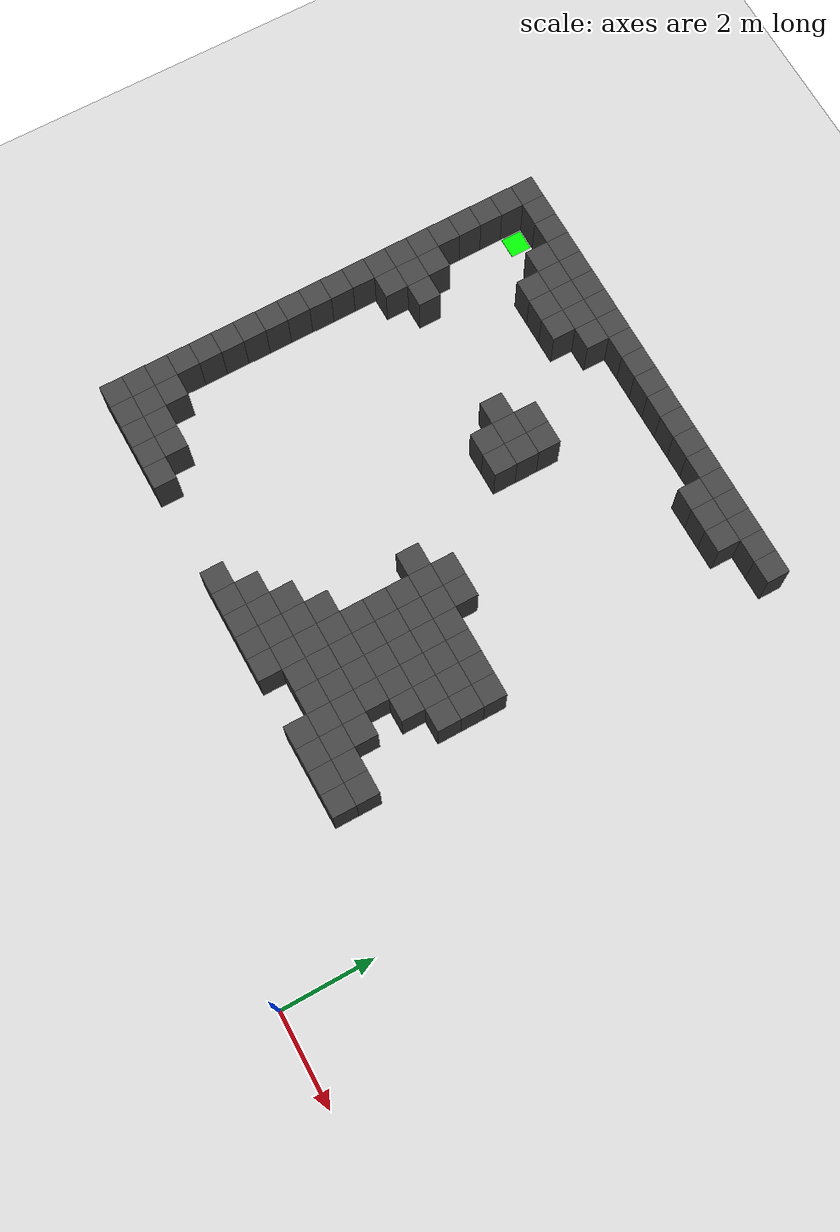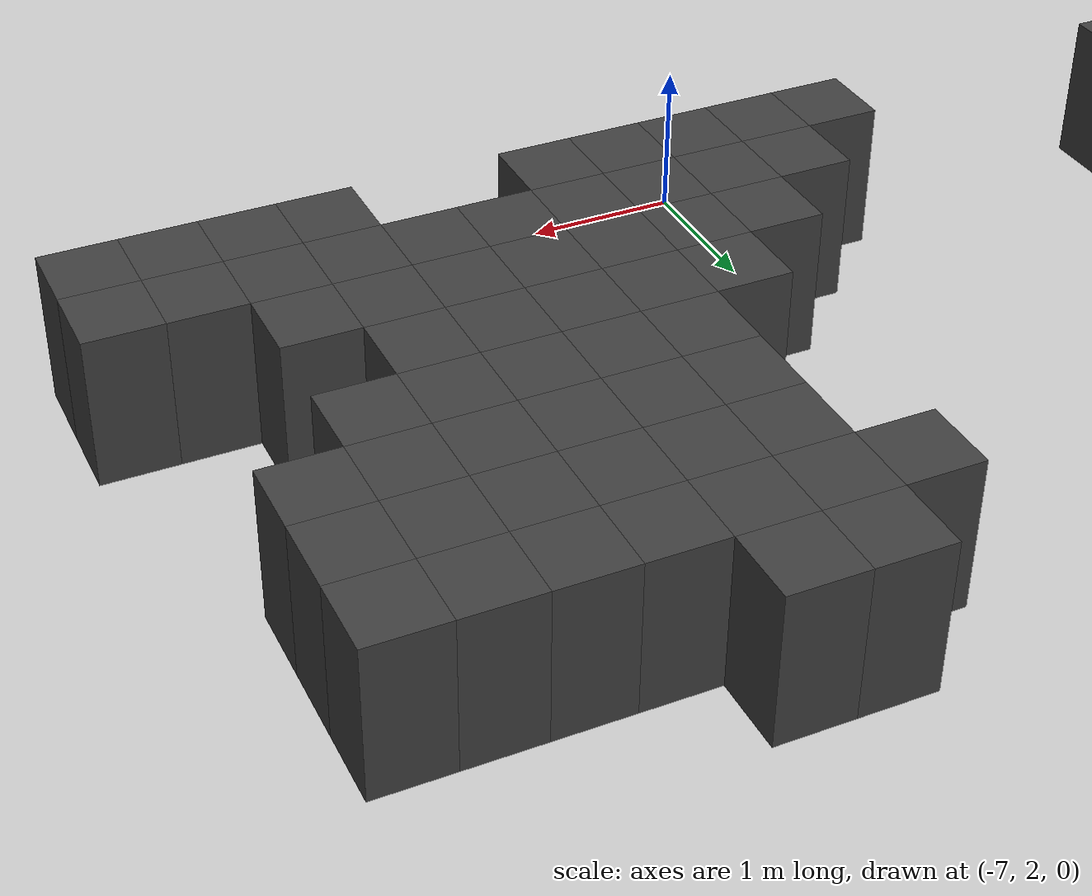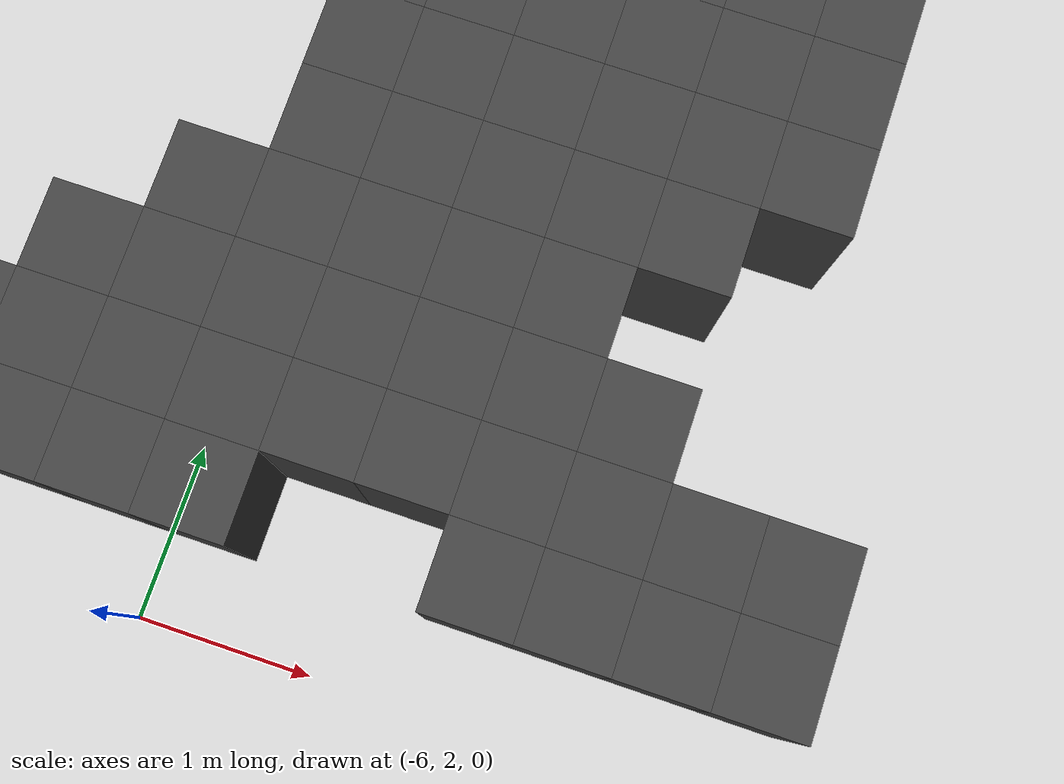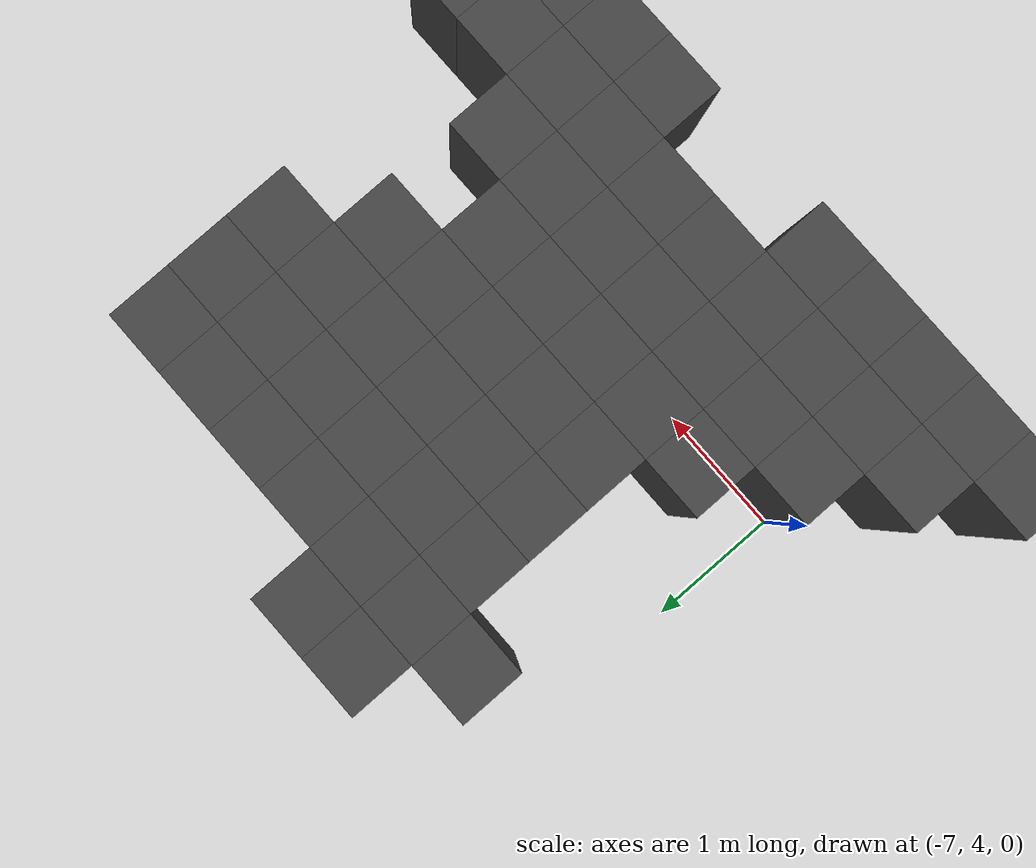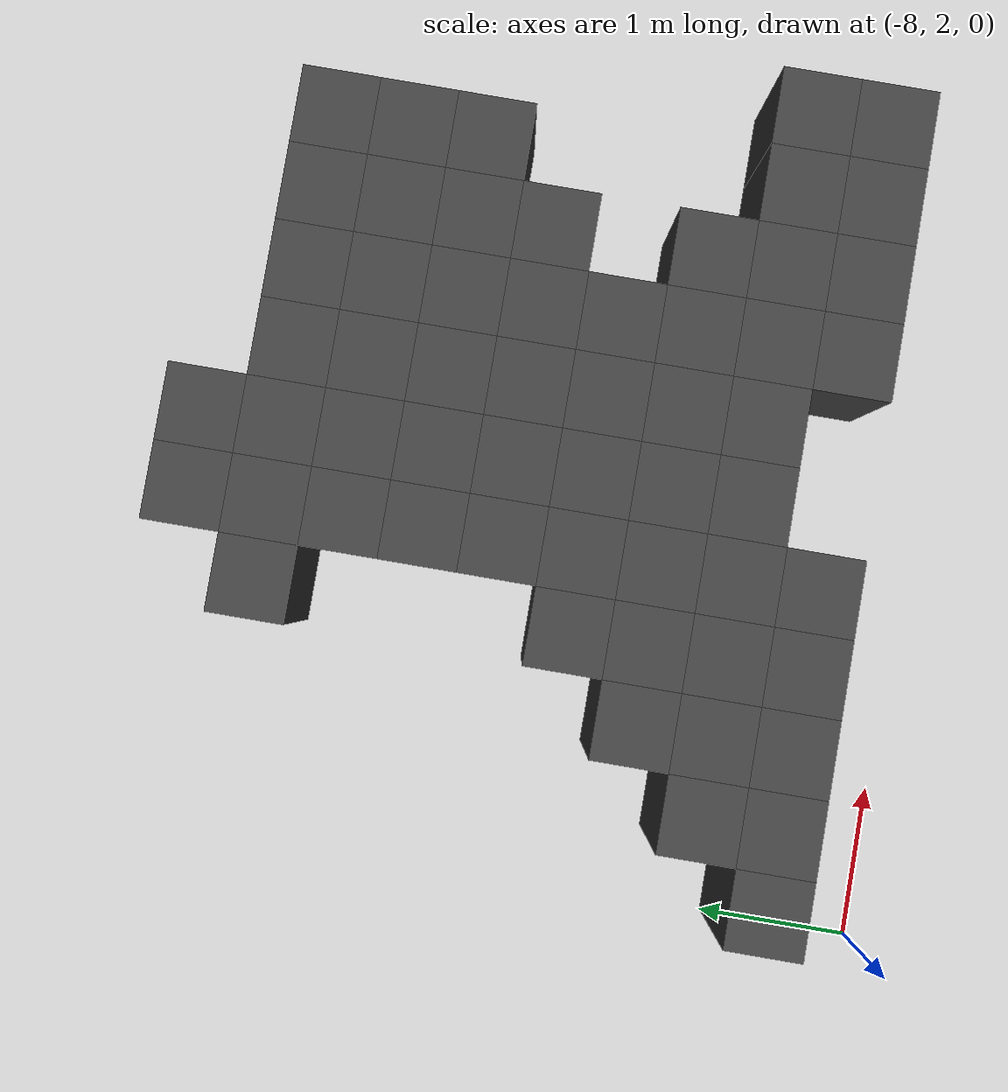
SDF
<sdf version="1.7">
 <world name="map_7981">
  <model name="ground_plane">
   <static>true</static>
   <link name="link">
    <collision name="collision">
     <geometry><plane><normal>0 0 1</normal><size>200 200</size></plane></geometry>
    </collision>
    <visual name="visual">
     <geometry><plane><normal>0 0 1</normal><size>200 200</size></plane></geometry>
     <material><ambient>0.8 0.8 0.8 1</ambient><diffuse>0.8 0.8 0.8 1</diffuse></material>
    </visual>
   </link>
  </model>
  <model name="maze_environment">
   <static>true</static>
   <link name="wall_0">
    <pose>-12.250 12.250 0.500 0 0 0</pose>
    <collision name="col"><geometry><box><size>0.5 0.5 1.0</size></box></geometry></collision>
    <visual name="vis">
     <geometry><box><size>0.5 0.5 1.0</size></box></geometry>
     <material><ambient>0.15 0.15 0.15 1</ambient><diffuse>0.25 0.25 0.25 1</diffuse></material>
    </visual>
   </link>
   <link name="wall_1">
    <pose>-11.750 12.250 0.500 0 0 0</pose>
    <collision name="col"><geometry><box><size>0.5 0.5 1.0</size></box></geometry></collision>
    <visual name="vis">
     <geometry><box><size>0.5 0.5 1.0</size></box></geometry>
     <material><ambient>0.15 0.15 0.15 1</ambient><diffuse>0.25 0.25 0.25 1</diffuse></material>
    </visual>
   </link>
   <link name="wall_2">
    <pose>-11.250 12.250 0.500 0 0 0</pose>
    <collision name="col"><geometry><box><size>0.5 0.5 1.0</size></box></geometry></collision>
    <visual name="vis">
     <geometry><box><size>0.5 0.5 1.0</size></box></geometry>
     <material><ambient>0.15 0.15 0.15 1</ambient><diffuse>0.25 0.25 0.25 1</diffuse></material>
    </visual>
   </link>
   <link name="wall_3">
    <pose>-10.750 12.250 0.500 0 0 0</pose>
    <collision name="col"><geometry><box><size>0.5 0.5 1.0</size></box></geometry></collision>
    <visual name="vis">
     <geometry><box><size>0.5 0.5 1.0</size></box></geometry>
     <material><ambient>0.15 0.15 0.15 1</ambient><diffuse>0.25 0.25 0.25 1</diffuse></material>
    </visual>
   </link>
   <link name="wall_4">
    <pose>-10.250 12.250 0.500 0 0 0</pose>
    <collision name="col"><geometry><box><size>0.5 0.5 1.0</size></box></geometry></collision>
    <visual name="vis">
     <geometry><box><size>0.5 0.5 1.0</size></box></geometry>
     <material><ambient>0.15 0.15 0.15 1</ambient><diffuse>0.25 0.25 0.25 1</diffuse></material>
    </visual>
   </link>
   <link name="wall_5">
    <pose>-9.750 12.250 0.500 0 0 0</pose>
    <collision name="col"><geometry><box><size>0.5 0.5 1.0</size></box></geometry></collision>
    <visual name="vis">
     <geometry><box><size>0.5 0.5 1.0</size></box></geometry>
     <material><ambient>0.15 0.15 0.15 1</ambient><diffuse>0.25 0.25 0.25 1</diffuse></material>
    </visual>
   </link>
   <link name="wall_6">
    <pose>-9.250 12.250 0.500 0 0 0</pose>
    <collision name="col"><geometry><box><size>0.5 0.5 1.0</size></box></geometry></collision>
    <visual name="vis">
     <geometry><box><size>0.5 0.5 1.0</size></box></geometry>
     <material><ambient>0.15 0.15 0.15 1</ambient><diffuse>0.25 0.25 0.25 1</diffuse></material>
    </visual>
   </link>
   <link name="wall_7">
    <pose>-8.750 12.250 0.500 0 0 0</pose>
    <collision name="col"><geometry><box><size>0.5 0.5 1.0</size></box></geometry></collision>
    <visual name="vis">
     <geometry><box><size>0.5 0.5 1.0</size></box></geometry>
     <material><ambient>0.15 0.15 0.15 1</ambient><diffuse>0.25 0.25 0.25 1</diffuse></material>
    </visual>
   </link>
   <link name="wall_8">
    <pose>-8.250 12.250 0.500 0 0 0</pose>
    <collision name="col"><geometry><box><size>0.5 0.5 1.0</size></box></geometry></collision>
    <visual name="vis">
     <geometry><box><size>0.5 0.5 1.0</size></box></geometry>
     <material><ambient>0.15 0.15 0.15 1</ambient><diffuse>0.25 0.25 0.25 1</diffuse></material>
    </visual>
   </link>
   <link name="wall_9">
    <pose>-7.750 12.250 0.500 0 0 0</pose>
    <collision name="col"><geometry><box><size>0.5 0.5 1.0</size></box></geometry></collision>
    <visual name="vis">
     <geometry><box><size>0.5 0.5 1.0</size></box></geometry>
     <material><ambient>0.15 0.15 0.15 1</ambient><diffuse>0.25 0.25 0.25 1</diffuse></material>
    </visual>
   </link>
   <link name="wall_10">
    <pose>-7.250 12.250 0.500 0 0 0</pose>
    <collision name="col"><geometry><box><size>0.5 0.5 1.0</size></box></geometry></collision>
    <visual name="vis">
     <geometry><box><size>0.5 0.5 1.0</size></box></geometry>
     <material><ambient>0.15 0.15 0.15 1</ambient><diffuse>0.25 0.25 0.25 1</diffuse></material>
    </visual>
   </link>
   <link name="wall_11">
    <pose>-6.750 12.250 0.500 0 0 0</pose>
    <collision name="col"><geometry><box><size>0.5 0.5 1.0</size></box></geometry></collision>
    <visual name="vis">
     <geometry><box><size>0.5 0.5 1.0</size></box></geometry>
     <material><ambient>0.15 0.15 0.15 1</ambient><diffuse>0.25 0.25 0.25 1</diffuse></material>
    </visual>
   </link>
   <link name="wall_12">
    <pose>-6.250 12.250 0.500 0 0 0</pose>
    <collision name="col"><geometry><box><size>0.5 0.5 1.0</size></box></geometry></collision>
    <visual name="vis">
     <geometry><box><size>0.5 0.5 1.0</size></box></geometry>
     <material><ambient>0.15 0.15 0.15 1</ambient><diffuse>0.25 0.25 0.25 1</diffuse></material>
    </visual>
   </link>
   <link name="wall_13">
    <pose>-5.750 12.250 0.500 0 0 0</pose>
    <collision name="col"><geometry><box><size>0.5 0.5 1.0</size></box></geometry></collision>
    <visual name="vis">
     <geometry><box><size>0.5 0.5 1.0</size></box></geometry>
     <material><ambient>0.15 0.15 0.15 1</ambient><diffuse>0.25 0.25 0.25 1</diffuse></material>
    </visual>
   </link>
   <link name="wall_14">
    <pose>-5.250 12.250 0.500 0 0 0</pose>
    <collision name="col"><geometry><box><size>0.5 0.5 1.0</size></box></geometry></collision>
    <visual name="vis">
     <geometry><box><size>0.5 0.5 1.0</size></box></geometry>
     <material><ambient>0.15 0.15 0.15 1</ambient><diffuse>0.25 0.25 0.25 1</diffuse></material>
    </visual>
   </link>
   <link name="wall_15">
    <pose>-4.750 12.250 0.500 0 0 0</pose>
    <collision name="col"><geometry><box><size>0.5 0.5 1.0</size></box></geometry></collision>
    <visual name="vis">
     <geometry><box><size>0.5 0.5 1.0</size></box></geometry>
     <material><ambient>0.15 0.15 0.15 1</ambient><diffuse>0.25 0.25 0.25 1</diffuse></material>
    </visual>
   </link>
   <link name="wall_16">
    <pose>-4.250 12.250 0.500 0 0 0</pose>
    <collision name="col"><geometry><box><size>0.5 0.5 1.0</size></box></geometry></collision>
    <visual name="vis">
     <geometry><box><size>0.5 0.5 1.0</size></box></geometry>
     <material><ambient>0.15 0.15 0.15 1</ambient><diffuse>0.25 0.25 0.25 1</diffuse></material>
    </visual>
   </link>
   <link name="wall_17">
    <pose>-3.750 12.250 0.500 0 0 0</pose>
    <collision name="col"><geometry><box><size>0.5 0.5 1.0</size></box></geometry></collision>
    <visual name="vis">
     <geometry><box><size>0.5 0.5 1.0</size></box></geometry>
     <material><ambient>0.15 0.15 0.15 1</ambient><diffuse>0.25 0.25 0.25 1</diffuse></material>
    </visual>
   </link>
   <link name="wall_18">
    <pose>-3.250 12.250 0.500 0 0 0</pose>
    <collision name="col"><geometry><box><size>0.5 0.5 1.0</size></box></geometry></collision>
    <visual name="vis">
     <geometry><box><size>0.5 0.5 1.0</size></box></geometry>
     <material><ambient>0.15 0.15 0.15 1</ambient><diffuse>0.25 0.25 0.25 1</diffuse></material>
    </visual>
   </link>
   <link name="wall_19">
    <pose>-2.750 12.250 0.500 0 0 0</pose>
    <collision name="col"><geometry><box><size>0.5 0.5 1.0</size></box></geometry></collision>
    <visual name="vis">
     <geometry><box><size>0.5 0.5 1.0</size></box></geometry>
     <material><ambient>0.15 0.15 0.15 1</ambient><diffuse>0.25 0.25 0.25 1</diffuse></material>
    </visual>
   </link>
   <link name="wall_50">
    <pose>-12.250 11.750 0.500 0 0 0</pose>
    <collision name="col"><geometry><box><size>0.5 0.5 1.0</size></box></geometry></collision>
    <visual name="vis">
     <geometry><box><size>0.5 0.5 1.0</size></box></geometry>
     <material><ambient>0.15 0.15 0.15 1</ambient><diffuse>0.25 0.25 0.25 1</diffuse></material>
    </visual>
   </link>
   <link name="wall_51">
    <pose>-10.750 11.750 0.500 0 0 0</pose>
    <collision name="col"><geometry><box><size>0.5 0.5 1.0</size></box></geometry></collision>
    <visual name="vis">
     <geometry><box><size>0.5 0.5 1.0</size></box></geometry>
     <material><ambient>0.15 0.15 0.15 1</ambient><diffuse>0.25 0.25 0.25 1</diffuse></material>
    </visual>
   </link>
   <link name="wall_52">
    <pose>-10.250 11.750 0.500 0 0 0</pose>
    <collision name="col"><geometry><box><size>0.5 0.5 1.0</size></box></geometry></collision>
    <visual name="vis">
     <geometry><box><size>0.5 0.5 1.0</size></box></geometry>
     <material><ambient>0.15 0.15 0.15 1</ambient><diffuse>0.25 0.25 0.25 1</diffuse></material>
    </visual>
   </link>
   <link name="wall_53">
    <pose>-9.750 11.750 0.500 0 0 0</pose>
    <collision name="col"><geometry><box><size>0.5 0.5 1.0</size></box></geometry></collision>
    <visual name="vis">
     <geometry><box><size>0.5 0.5 1.0</size></box></geometry>
     <material><ambient>0.15 0.15 0.15 1</ambient><diffuse>0.25 0.25 0.25 1</diffuse></material>
    </visual>
   </link>
   <link name="wall_54">
    <pose>-9.250 11.750 0.500 0 0 0</pose>
    <collision name="col"><geometry><box><size>0.5 0.5 1.0</size></box></geometry></collision>
    <visual name="vis">
     <geometry><box><size>0.5 0.5 1.0</size></box></geometry>
     <material><ambient>0.15 0.15 0.15 1</ambient><diffuse>0.25 0.25 0.25 1</diffuse></material>
    </visual>
   </link>
   <link name="wall_55">
    <pose>-8.750 11.750 0.500 0 0 0</pose>
    <collision name="col"><geometry><box><size>0.5 0.5 1.0</size></box></geometry></collision>
    <visual name="vis">
     <geometry><box><size>0.5 0.5 1.0</size></box></geometry>
     <material><ambient>0.15 0.15 0.15 1</ambient><diffuse>0.25 0.25 0.25 1</diffuse></material>
    </visual>
   </link>
   <link name="wall_56">
    <pose>-4.750 11.750 0.500 0 0 0</pose>
    <collision name="col"><geometry><box><size>0.5 0.5 1.0</size></box></geometry></collision>
    <visual name="vis">
     <geometry><box><size>0.5 0.5 1.0</size></box></geometry>
     <material><ambient>0.15 0.15 0.15 1</ambient><diffuse>0.25 0.25 0.25 1</diffuse></material>
    </visual>
   </link>
   <link name="wall_57">
    <pose>-4.250 11.750 0.500 0 0 0</pose>
    <collision name="col"><geometry><box><size>0.5 0.5 1.0</size></box></geometry></collision>
    <visual name="vis">
     <geometry><box><size>0.5 0.5 1.0</size></box></geometry>
     <material><ambient>0.15 0.15 0.15 1</ambient><diffuse>0.25 0.25 0.25 1</diffuse></material>
    </visual>
   </link>
   <link name="wall_58">
    <pose>-3.750 11.750 0.500 0 0 0</pose>
    <collision name="col"><geometry><box><size>0.5 0.5 1.0</size></box></geometry></collision>
    <visual name="vis">
     <geometry><box><size>0.5 0.5 1.0</size></box></geometry>
     <material><ambient>0.15 0.15 0.15 1</ambient><diffuse>0.25 0.25 0.25 1</diffuse></material>
    </visual>
   </link>
   <link name="wall_73">
    <pose>-12.250 11.250 0.500 0 0 0</pose>
    <collision name="col"><geometry><box><size>0.5 0.5 1.0</size></box></geometry></collision>
    <visual name="vis">
     <geometry><box><size>0.5 0.5 1.0</size></box></geometry>
     <material><ambient>0.15 0.15 0.15 1</ambient><diffuse>0.25 0.25 0.25 1</diffuse></material>
    </visual>
   </link>
   <link name="wall_74">
    <pose>-10.250 11.250 0.500 0 0 0</pose>
    <collision name="col"><geometry><box><size>0.5 0.5 1.0</size></box></geometry></collision>
    <visual name="vis">
     <geometry><box><size>0.5 0.5 1.0</size></box></geometry>
     <material><ambient>0.15 0.15 0.15 1</ambient><diffuse>0.25 0.25 0.25 1</diffuse></material>
    </visual>
   </link>
   <link name="wall_75">
    <pose>-9.750 11.250 0.500 0 0 0</pose>
    <collision name="col"><geometry><box><size>0.5 0.5 1.0</size></box></geometry></collision>
    <visual name="vis">
     <geometry><box><size>0.5 0.5 1.0</size></box></geometry>
     <material><ambient>0.15 0.15 0.15 1</ambient><diffuse>0.25 0.25 0.25 1</diffuse></material>
    </visual>
   </link>
   <link name="wall_76">
    <pose>-9.250 11.250 0.500 0 0 0</pose>
    <collision name="col"><geometry><box><size>0.5 0.5 1.0</size></box></geometry></collision>
    <visual name="vis">
     <geometry><box><size>0.5 0.5 1.0</size></box></geometry>
     <material><ambient>0.15 0.15 0.15 1</ambient><diffuse>0.25 0.25 0.25 1</diffuse></material>
    </visual>
   </link>
   <link name="wall_88">
    <pose>-12.250 10.750 0.500 0 0 0</pose>
    <collision name="col"><geometry><box><size>0.5 0.5 1.0</size></box></geometry></collision>
    <visual name="vis">
     <geometry><box><size>0.5 0.5 1.0</size></box></geometry>
     <material><ambient>0.15 0.15 0.15 1</ambient><diffuse>0.25 0.25 0.25 1</diffuse></material>
    </visual>
   </link>
   <link name="wall_101">
    <pose>-12.250 10.250 0.500 0 0 0</pose>
    <collision name="col"><geometry><box><size>0.5 0.5 1.0</size></box></geometry></collision>
    <visual name="vis">
     <geometry><box><size>0.5 0.5 1.0</size></box></geometry>
     <material><ambient>0.15 0.15 0.15 1</ambient><diffuse>0.25 0.25 0.25 1</diffuse></material>
    </visual>
   </link>
   <link name="wall_114">
    <pose>-12.250 9.750 0.500 0 0 0</pose>
    <collision name="col"><geometry><box><size>0.5 0.5 1.0</size></box></geometry></collision>
    <visual name="vis">
     <geometry><box><size>0.5 0.5 1.0</size></box></geometry>
     <material><ambient>0.15 0.15 0.15 1</ambient><diffuse>0.25 0.25 0.25 1</diffuse></material>
    </visual>
   </link>
   <link name="wall_115">
    <pose>-11.750 9.750 0.500 0 0 0</pose>
    <collision name="col"><geometry><box><size>0.5 0.5 1.0</size></box></geometry></collision>
    <visual name="vis">
     <geometry><box><size>0.5 0.5 1.0</size></box></geometry>
     <material><ambient>0.15 0.15 0.15 1</ambient><diffuse>0.25 0.25 0.25 1</diffuse></material>
    </visual>
   </link>
   <link name="wall_116">
    <pose>-7.750 9.750 0.500 0 0 0</pose>
    <collision name="col"><geometry><box><size>0.5 0.5 1.0</size></box></geometry></collision>
    <visual name="vis">
     <geometry><box><size>0.5 0.5 1.0</size></box></geometry>
     <material><ambient>0.15 0.15 0.15 1</ambient><diffuse>0.25 0.25 0.25 1</diffuse></material>
    </visual>
   </link>
   <link name="wall_117">
    <pose>-7.250 9.750 0.500 0 0 0</pose>
    <collision name="col"><geometry><box><size>0.5 0.5 1.0</size></box></geometry></collision>
    <visual name="vis">
     <geometry><box><size>0.5 0.5 1.0</size></box></geometry>
     <material><ambient>0.15 0.15 0.15 1</ambient><diffuse>0.25 0.25 0.25 1</diffuse></material>
    </visual>
   </link>
   <link name="wall_129">
    <pose>-12.250 9.250 0.500 0 0 0</pose>
    <collision name="col"><geometry><box><size>0.5 0.5 1.0</size></box></geometry></collision>
    <visual name="vis">
     <geometry><box><size>0.5 0.5 1.0</size></box></geometry>
     <material><ambient>0.15 0.15 0.15 1</ambient><diffuse>0.25 0.25 0.25 1</diffuse></material>
    </visual>
   </link>
   <link name="wall_130">
    <pose>-11.750 9.250 0.500 0 0 0</pose>
    <collision name="col"><geometry><box><size>0.5 0.5 1.0</size></box></geometry></collision>
    <visual name="vis">
     <geometry><box><size>0.5 0.5 1.0</size></box></geometry>
     <material><ambient>0.15 0.15 0.15 1</ambient><diffuse>0.25 0.25 0.25 1</diffuse></material>
    </visual>
   </link>
   <link name="wall_131">
    <pose>-11.250 9.250 0.500 0 0 0</pose>
    <collision name="col"><geometry><box><size>0.5 0.5 1.0</size></box></geometry></collision>
    <visual name="vis">
     <geometry><box><size>0.5 0.5 1.0</size></box></geometry>
     <material><ambient>0.15 0.15 0.15 1</ambient><diffuse>0.25 0.25 0.25 1</diffuse></material>
    </visual>
   </link>
   <link name="wall_132">
    <pose>-8.250 9.250 0.500 0 0 0</pose>
    <collision name="col"><geometry><box><size>0.5 0.5 1.0</size></box></geometry></collision>
    <visual name="vis">
     <geometry><box><size>0.5 0.5 1.0</size></box></geometry>
     <material><ambient>0.15 0.15 0.15 1</ambient><diffuse>0.25 0.25 0.25 1</diffuse></material>
    </visual>
   </link>
   <link name="wall_133">
    <pose>-7.750 9.250 0.500 0 0 0</pose>
    <collision name="col"><geometry><box><size>0.5 0.5 1.0</size></box></geometry></collision>
    <visual name="vis">
     <geometry><box><size>0.5 0.5 1.0</size></box></geometry>
     <material><ambient>0.15 0.15 0.15 1</ambient><diffuse>0.25 0.25 0.25 1</diffuse></material>
    </visual>
   </link>
   <link name="wall_134">
    <pose>-7.250 9.250 0.500 0 0 0</pose>
    <collision name="col"><geometry><box><size>0.5 0.5 1.0</size></box></geometry></collision>
    <visual name="vis">
     <geometry><box><size>0.5 0.5 1.0</size></box></geometry>
     <material><ambient>0.15 0.15 0.15 1</ambient><diffuse>0.25 0.25 0.25 1</diffuse></material>
    </visual>
   </link>
   <link name="wall_141">
    <pose>-12.250 8.750 0.500 0 0 0</pose>
    <collision name="col"><geometry><box><size>0.5 0.5 1.0</size></box></geometry></collision>
    <visual name="vis">
     <geometry><box><size>0.5 0.5 1.0</size></box></geometry>
     <material><ambient>0.15 0.15 0.15 1</ambient><diffuse>0.25 0.25 0.25 1</diffuse></material>
    </visual>
   </link>
   <link name="wall_142">
    <pose>-11.750 8.750 0.500 0 0 0</pose>
    <collision name="col"><geometry><box><size>0.5 0.5 1.0</size></box></geometry></collision>
    <visual name="vis">
     <geometry><box><size>0.5 0.5 1.0</size></box></geometry>
     <material><ambient>0.15 0.15 0.15 1</ambient><diffuse>0.25 0.25 0.25 1</diffuse></material>
    </visual>
   </link>
   <link name="wall_143">
    <pose>-7.750 8.750 0.500 0 0 0</pose>
    <collision name="col"><geometry><box><size>0.5 0.5 1.0</size></box></geometry></collision>
    <visual name="vis">
     <geometry><box><size>0.5 0.5 1.0</size></box></geometry>
     <material><ambient>0.15 0.15 0.15 1</ambient><diffuse>0.25 0.25 0.25 1</diffuse></material>
    </visual>
   </link>
   <link name="wall_144">
    <pose>-7.250 8.750 0.500 0 0 0</pose>
    <collision name="col"><geometry><box><size>0.5 0.5 1.0</size></box></geometry></collision>
    <visual name="vis">
     <geometry><box><size>0.5 0.5 1.0</size></box></geometry>
     <material><ambient>0.15 0.15 0.15 1</ambient><diffuse>0.25 0.25 0.25 1</diffuse></material>
    </visual>
   </link>
   <link name="wall_146">
    <pose>-12.250 8.250 0.500 0 0 0</pose>
    <collision name="col"><geometry><box><size>0.5 0.5 1.0</size></box></geometry></collision>
    <visual name="vis">
     <geometry><box><size>0.5 0.5 1.0</size></box></geometry>
     <material><ambient>0.15 0.15 0.15 1</ambient><diffuse>0.25 0.25 0.25 1</diffuse></material>
    </visual>
   </link>
   <link name="wall_149">
    <pose>-12.250 7.750 0.500 0 0 0</pose>
    <collision name="col"><geometry><box><size>0.5 0.5 1.0</size></box></geometry></collision>
    <visual name="vis">
     <geometry><box><size>0.5 0.5 1.0</size></box></geometry>
     <material><ambient>0.15 0.15 0.15 1</ambient><diffuse>0.25 0.25 0.25 1</diffuse></material>
    </visual>
   </link>
   <link name="wall_154">
    <pose>-12.250 7.250 0.500 0 0 0</pose>
    <collision name="col"><geometry><box><size>0.5 0.5 1.0</size></box></geometry></collision>
    <visual name="vis">
     <geometry><box><size>0.5 0.5 1.0</size></box></geometry>
     <material><ambient>0.15 0.15 0.15 1</ambient><diffuse>0.25 0.25 0.25 1</diffuse></material>
    </visual>
   </link>
   <link name="wall_157">
    <pose>-12.250 6.750 0.500 0 0 0</pose>
    <collision name="col"><geometry><box><size>0.5 0.5 1.0</size></box></geometry></collision>
    <visual name="vis">
     <geometry><box><size>0.5 0.5 1.0</size></box></geometry>
     <material><ambient>0.15 0.15 0.15 1</ambient><diffuse>0.25 0.25 0.25 1</diffuse></material>
    </visual>
   </link>
   <link name="wall_158">
    <pose>-5.750 6.750 0.500 0 0 0</pose>
    <collision name="col"><geometry><box><size>0.5 0.5 1.0</size></box></geometry></collision>
    <visual name="vis">
     <geometry><box><size>0.5 0.5 1.0</size></box></geometry>
     <material><ambient>0.15 0.15 0.15 1</ambient><diffuse>0.25 0.25 0.25 1</diffuse></material>
    </visual>
   </link>
   <link name="wall_159">
    <pose>-5.250 6.750 0.500 0 0 0</pose>
    <collision name="col"><geometry><box><size>0.5 0.5 1.0</size></box></geometry></collision>
    <visual name="vis">
     <geometry><box><size>0.5 0.5 1.0</size></box></geometry>
     <material><ambient>0.15 0.15 0.15 1</ambient><diffuse>0.25 0.25 0.25 1</diffuse></material>
    </visual>
   </link>
   <link name="wall_162">
    <pose>-12.250 6.250 0.500 0 0 0</pose>
    <collision name="col"><geometry><box><size>0.5 0.5 1.0</size></box></geometry></collision>
    <visual name="vis">
     <geometry><box><size>0.5 0.5 1.0</size></box></geometry>
     <material><ambient>0.15 0.15 0.15 1</ambient><diffuse>0.25 0.25 0.25 1</diffuse></material>
    </visual>
   </link>
   <link name="wall_163">
    <pose>-6.250 6.250 0.500 0 0 0</pose>
    <collision name="col"><geometry><box><size>0.5 0.5 1.0</size></box></geometry></collision>
    <visual name="vis">
     <geometry><box><size>0.5 0.5 1.0</size></box></geometry>
     <material><ambient>0.15 0.15 0.15 1</ambient><diffuse>0.25 0.25 0.25 1</diffuse></material>
    </visual>
   </link>
   <link name="wall_164">
    <pose>-5.750 6.250 0.500 0 0 0</pose>
    <collision name="col"><geometry><box><size>0.5 0.5 1.0</size></box></geometry></collision>
    <visual name="vis">
     <geometry><box><size>0.5 0.5 1.0</size></box></geometry>
     <material><ambient>0.15 0.15 0.15 1</ambient><diffuse>0.25 0.25 0.25 1</diffuse></material>
    </visual>
   </link>
   <link name="wall_165">
    <pose>-5.250 6.250 0.500 0 0 0</pose>
    <collision name="col"><geometry><box><size>0.5 0.5 1.0</size></box></geometry></collision>
    <visual name="vis">
     <geometry><box><size>0.5 0.5 1.0</size></box></geometry>
     <material><ambient>0.15 0.15 0.15 1</ambient><diffuse>0.25 0.25 0.25 1</diffuse></material>
    </visual>
   </link>
   <link name="wall_166">
    <pose>-4.750 6.250 0.500 0 0 0</pose>
    <collision name="col"><geometry><box><size>0.5 0.5 1.0</size></box></geometry></collision>
    <visual name="vis">
     <geometry><box><size>0.5 0.5 1.0</size></box></geometry>
     <material><ambient>0.15 0.15 0.15 1</ambient><diffuse>0.25 0.25 0.25 1</diffuse></material>
    </visual>
   </link>
   <link name="wall_167">
    <pose>-4.250 6.250 0.500 0 0 0</pose>
    <collision name="col"><geometry><box><size>0.5 0.5 1.0</size></box></geometry></collision>
    <visual name="vis">
     <geometry><box><size>0.5 0.5 1.0</size></box></geometry>
     <material><ambient>0.15 0.15 0.15 1</ambient><diffuse>0.25 0.25 0.25 1</diffuse></material>
    </visual>
   </link>
   <link name="wall_168">
    <pose>-3.750 6.250 0.500 0 0 0</pose>
    <collision name="col"><geometry><box><size>0.5 0.5 1.0</size></box></geometry></collision>
    <visual name="vis">
     <geometry><box><size>0.5 0.5 1.0</size></box></geometry>
     <material><ambient>0.15 0.15 0.15 1</ambient><diffuse>0.25 0.25 0.25 1</diffuse></material>
    </visual>
   </link>
   <link name="wall_169">
    <pose>-3.250 6.250 0.500 0 0 0</pose>
    <collision name="col"><geometry><box><size>0.5 0.5 1.0</size></box></geometry></collision>
    <visual name="vis">
     <geometry><box><size>0.5 0.5 1.0</size></box></geometry>
     <material><ambient>0.15 0.15 0.15 1</ambient><diffuse>0.25 0.25 0.25 1</diffuse></material>
    </visual>
   </link>
   <link name="wall_171">
    <pose>-12.250 5.750 0.500 0 0 0</pose>
    <collision name="col"><geometry><box><size>0.5 0.5 1.0</size></box></geometry></collision>
    <visual name="vis">
     <geometry><box><size>0.5 0.5 1.0</size></box></geometry>
     <material><ambient>0.15 0.15 0.15 1</ambient><diffuse>0.25 0.25 0.25 1</diffuse></material>
    </visual>
   </link>
   <link name="wall_172">
    <pose>-5.750 5.750 0.500 0 0 0</pose>
    <collision name="col"><geometry><box><size>0.5 0.5 1.0</size></box></geometry></collision>
    <visual name="vis">
     <geometry><box><size>0.5 0.5 1.0</size></box></geometry>
     <material><ambient>0.15 0.15 0.15 1</ambient><diffuse>0.25 0.25 0.25 1</diffuse></material>
    </visual>
   </link>
   <link name="wall_173">
    <pose>-5.250 5.750 0.500 0 0 0</pose>
    <collision name="col"><geometry><box><size>0.5 0.5 1.0</size></box></geometry></collision>
    <visual name="vis">
     <geometry><box><size>0.5 0.5 1.0</size></box></geometry>
     <material><ambient>0.15 0.15 0.15 1</ambient><diffuse>0.25 0.25 0.25 1</diffuse></material>
    </visual>
   </link>
   <link name="wall_174">
    <pose>-4.750 5.750 0.500 0 0 0</pose>
    <collision name="col"><geometry><box><size>0.5 0.5 1.0</size></box></geometry></collision>
    <visual name="vis">
     <geometry><box><size>0.5 0.5 1.0</size></box></geometry>
     <material><ambient>0.15 0.15 0.15 1</ambient><diffuse>0.25 0.25 0.25 1</diffuse></material>
    </visual>
   </link>
   <link name="wall_175">
    <pose>-4.250 5.750 0.500 0 0 0</pose>
    <collision name="col"><geometry><box><size>0.5 0.5 1.0</size></box></geometry></collision>
    <visual name="vis">
     <geometry><box><size>0.5 0.5 1.0</size></box></geometry>
     <material><ambient>0.15 0.15 0.15 1</ambient><diffuse>0.25 0.25 0.25 1</diffuse></material>
    </visual>
   </link>
   <link name="wall_176">
    <pose>-3.750 5.750 0.500 0 0 0</pose>
    <collision name="col"><geometry><box><size>0.5 0.5 1.0</size></box></geometry></collision>
    <visual name="vis">
     <geometry><box><size>0.5 0.5 1.0</size></box></geometry>
     <material><ambient>0.15 0.15 0.15 1</ambient><diffuse>0.25 0.25 0.25 1</diffuse></material>
    </visual>
   </link>
   <link name="wall_177">
    <pose>-3.250 5.750 0.500 0 0 0</pose>
    <collision name="col"><geometry><box><size>0.5 0.5 1.0</size></box></geometry></collision>
    <visual name="vis">
     <geometry><box><size>0.5 0.5 1.0</size></box></geometry>
     <material><ambient>0.15 0.15 0.15 1</ambient><diffuse>0.25 0.25 0.25 1</diffuse></material>
    </visual>
   </link>
   <link name="wall_179">
    <pose>-12.250 5.250 0.500 0 0 0</pose>
    <collision name="col"><geometry><box><size>0.5 0.5 1.0</size></box></geometry></collision>
    <visual name="vis">
     <geometry><box><size>0.5 0.5 1.0</size></box></geometry>
     <material><ambient>0.15 0.15 0.15 1</ambient><diffuse>0.25 0.25 0.25 1</diffuse></material>
    </visual>
   </link>
   <link name="wall_180">
    <pose>-5.750 5.250 0.500 0 0 0</pose>
    <collision name="col"><geometry><box><size>0.5 0.5 1.0</size></box></geometry></collision>
    <visual name="vis">
     <geometry><box><size>0.5 0.5 1.0</size></box></geometry>
     <material><ambient>0.15 0.15 0.15 1</ambient><diffuse>0.25 0.25 0.25 1</diffuse></material>
    </visual>
   </link>
   <link name="wall_181">
    <pose>-5.250 5.250 0.500 0 0 0</pose>
    <collision name="col"><geometry><box><size>0.5 0.5 1.0</size></box></geometry></collision>
    <visual name="vis">
     <geometry><box><size>0.5 0.5 1.0</size></box></geometry>
     <material><ambient>0.15 0.15 0.15 1</ambient><diffuse>0.25 0.25 0.25 1</diffuse></material>
    </visual>
   </link>
   <link name="wall_182">
    <pose>-4.750 5.250 0.500 0 0 0</pose>
    <collision name="col"><geometry><box><size>0.5 0.5 1.0</size></box></geometry></collision>
    <visual name="vis">
     <geometry><box><size>0.5 0.5 1.0</size></box></geometry>
     <material><ambient>0.15 0.15 0.15 1</ambient><diffuse>0.25 0.25 0.25 1</diffuse></material>
    </visual>
   </link>
   <link name="wall_183">
    <pose>-4.250 5.250 0.500 0 0 0</pose>
    <collision name="col"><geometry><box><size>0.5 0.5 1.0</size></box></geometry></collision>
    <visual name="vis">
     <geometry><box><size>0.5 0.5 1.0</size></box></geometry>
     <material><ambient>0.15 0.15 0.15 1</ambient><diffuse>0.25 0.25 0.25 1</diffuse></material>
    </visual>
   </link>
   <link name="wall_184">
    <pose>-3.750 5.250 0.500 0 0 0</pose>
    <collision name="col"><geometry><box><size>0.5 0.5 1.0</size></box></geometry></collision>
    <visual name="vis">
     <geometry><box><size>0.5 0.5 1.0</size></box></geometry>
     <material><ambient>0.15 0.15 0.15 1</ambient><diffuse>0.25 0.25 0.25 1</diffuse></material>
    </visual>
   </link>
   <link name="wall_185">
    <pose>-3.250 5.250 0.500 0 0 0</pose>
    <collision name="col"><geometry><box><size>0.5 0.5 1.0</size></box></geometry></collision>
    <visual name="vis">
     <geometry><box><size>0.5 0.5 1.0</size></box></geometry>
     <material><ambient>0.15 0.15 0.15 1</ambient><diffuse>0.25 0.25 0.25 1</diffuse></material>
    </visual>
   </link>
   <link name="wall_187">
    <pose>-12.250 4.750 0.500 0 0 0</pose>
    <collision name="col"><geometry><box><size>0.5 0.5 1.0</size></box></geometry></collision>
    <visual name="vis">
     <geometry><box><size>0.5 0.5 1.0</size></box></geometry>
     <material><ambient>0.15 0.15 0.15 1</ambient><diffuse>0.25 0.25 0.25 1</diffuse></material>
    </visual>
   </link>
   <link name="wall_188">
    <pose>-5.750 4.750 0.500 0 0 0</pose>
    <collision name="col"><geometry><box><size>0.5 0.5 1.0</size></box></geometry></collision>
    <visual name="vis">
     <geometry><box><size>0.5 0.5 1.0</size></box></geometry>
     <material><ambient>0.15 0.15 0.15 1</ambient><diffuse>0.25 0.25 0.25 1</diffuse></material>
    </visual>
   </link>
   <link name="wall_189">
    <pose>-5.250 4.750 0.500 0 0 0</pose>
    <collision name="col"><geometry><box><size>0.5 0.5 1.0</size></box></geometry></collision>
    <visual name="vis">
     <geometry><box><size>0.5 0.5 1.0</size></box></geometry>
     <material><ambient>0.15 0.15 0.15 1</ambient><diffuse>0.25 0.25 0.25 1</diffuse></material>
    </visual>
   </link>
   <link name="wall_190">
    <pose>-4.750 4.750 0.500 0 0 0</pose>
    <collision name="col"><geometry><box><size>0.5 0.5 1.0</size></box></geometry></collision>
    <visual name="vis">
     <geometry><box><size>0.5 0.5 1.0</size></box></geometry>
     <material><ambient>0.15 0.15 0.15 1</ambient><diffuse>0.25 0.25 0.25 1</diffuse></material>
    </visual>
   </link>
   <link name="wall_191">
    <pose>-4.250 4.750 0.500 0 0 0</pose>
    <collision name="col"><geometry><box><size>0.5 0.5 1.0</size></box></geometry></collision>
    <visual name="vis">
     <geometry><box><size>0.5 0.5 1.0</size></box></geometry>
     <material><ambient>0.15 0.15 0.15 1</ambient><diffuse>0.25 0.25 0.25 1</diffuse></material>
    </visual>
   </link>
   <link name="wall_192">
    <pose>-3.750 4.750 0.500 0 0 0</pose>
    <collision name="col"><geometry><box><size>0.5 0.5 1.0</size></box></geometry></collision>
    <visual name="vis">
     <geometry><box><size>0.5 0.5 1.0</size></box></geometry>
     <material><ambient>0.15 0.15 0.15 1</ambient><diffuse>0.25 0.25 0.25 1</diffuse></material>
    </visual>
   </link>
   <link name="wall_196">
    <pose>-12.250 4.250 0.500 0 0 0</pose>
    <collision name="col"><geometry><box><size>0.5 0.5 1.0</size></box></geometry></collision>
    <visual name="vis">
     <geometry><box><size>0.5 0.5 1.0</size></box></geometry>
     <material><ambient>0.15 0.15 0.15 1</ambient><diffuse>0.25 0.25 0.25 1</diffuse></material>
    </visual>
   </link>
   <link name="wall_197">
    <pose>-6.250 4.250 0.500 0 0 0</pose>
    <collision name="col"><geometry><box><size>0.5 0.5 1.0</size></box></geometry></collision>
    <visual name="vis">
     <geometry><box><size>0.5 0.5 1.0</size></box></geometry>
     <material><ambient>0.15 0.15 0.15 1</ambient><diffuse>0.25 0.25 0.25 1</diffuse></material>
    </visual>
   </link>
   <link name="wall_198">
    <pose>-5.750 4.250 0.500 0 0 0</pose>
    <collision name="col"><geometry><box><size>0.5 0.5 1.0</size></box></geometry></collision>
    <visual name="vis">
     <geometry><box><size>0.5 0.5 1.0</size></box></geometry>
     <material><ambient>0.15 0.15 0.15 1</ambient><diffuse>0.25 0.25 0.25 1</diffuse></material>
    </visual>
   </link>
   <link name="wall_199">
    <pose>-5.250 4.250 0.500 0 0 0</pose>
    <collision name="col"><geometry><box><size>0.5 0.5 1.0</size></box></geometry></collision>
    <visual name="vis">
     <geometry><box><size>0.5 0.5 1.0</size></box></geometry>
     <material><ambient>0.15 0.15 0.15 1</ambient><diffuse>0.25 0.25 0.25 1</diffuse></material>
    </visual>
   </link>
   <link name="wall_200">
    <pose>-4.750 4.250 0.500 0 0 0</pose>
    <collision name="col"><geometry><box><size>0.5 0.5 1.0</size></box></geometry></collision>
    <visual name="vis">
     <geometry><box><size>0.5 0.5 1.0</size></box></geometry>
     <material><ambient>0.15 0.15 0.15 1</ambient><diffuse>0.25 0.25 0.25 1</diffuse></material>
    </visual>
   </link>
   <link name="wall_201">
    <pose>-4.250 4.250 0.500 0 0 0</pose>
    <collision name="col"><geometry><box><size>0.5 0.5 1.0</size></box></geometry></collision>
    <visual name="vis">
     <geometry><box><size>0.5 0.5 1.0</size></box></geometry>
     <material><ambient>0.15 0.15 0.15 1</ambient><diffuse>0.25 0.25 0.25 1</diffuse></material>
    </visual>
   </link>
   <link name="wall_207">
    <pose>-12.250 3.750 0.500 0 0 0</pose>
    <collision name="col"><geometry><box><size>0.5 0.5 1.0</size></box></geometry></collision>
    <visual name="vis">
     <geometry><box><size>0.5 0.5 1.0</size></box></geometry>
     <material><ambient>0.15 0.15 0.15 1</ambient><diffuse>0.25 0.25 0.25 1</diffuse></material>
    </visual>
   </link>
   <link name="wall_208">
    <pose>-11.750 3.750 0.500 0 0 0</pose>
    <collision name="col"><geometry><box><size>0.5 0.5 1.0</size></box></geometry></collision>
    <visual name="vis">
     <geometry><box><size>0.5 0.5 1.0</size></box></geometry>
     <material><ambient>0.15 0.15 0.15 1</ambient><diffuse>0.25 0.25 0.25 1</diffuse></material>
    </visual>
   </link>
   <link name="wall_209">
    <pose>-6.750 3.750 0.500 0 0 0</pose>
    <collision name="col"><geometry><box><size>0.5 0.5 1.0</size></box></geometry></collision>
    <visual name="vis">
     <geometry><box><size>0.5 0.5 1.0</size></box></geometry>
     <material><ambient>0.15 0.15 0.15 1</ambient><diffuse>0.25 0.25 0.25 1</diffuse></material>
    </visual>
   </link>
   <link name="wall_210">
    <pose>-6.250 3.750 0.500 0 0 0</pose>
    <collision name="col"><geometry><box><size>0.5 0.5 1.0</size></box></geometry></collision>
    <visual name="vis">
     <geometry><box><size>0.5 0.5 1.0</size></box></geometry>
     <material><ambient>0.15 0.15 0.15 1</ambient><diffuse>0.25 0.25 0.25 1</diffuse></material>
    </visual>
   </link>
   <link name="wall_211">
    <pose>-5.750 3.750 0.500 0 0 0</pose>
    <collision name="col"><geometry><box><size>0.5 0.5 1.0</size></box></geometry></collision>
    <visual name="vis">
     <geometry><box><size>0.5 0.5 1.0</size></box></geometry>
     <material><ambient>0.15 0.15 0.15 1</ambient><diffuse>0.25 0.25 0.25 1</diffuse></material>
    </visual>
   </link>
   <link name="wall_212">
    <pose>-5.250 3.750 0.500 0 0 0</pose>
    <collision name="col"><geometry><box><size>0.5 0.5 1.0</size></box></geometry></collision>
    <visual name="vis">
     <geometry><box><size>0.5 0.5 1.0</size></box></geometry>
     <material><ambient>0.15 0.15 0.15 1</ambient><diffuse>0.25 0.25 0.25 1</diffuse></material>
    </visual>
   </link>
   <link name="wall_213">
    <pose>-4.750 3.750 0.500 0 0 0</pose>
    <collision name="col"><geometry><box><size>0.5 0.5 1.0</size></box></geometry></collision>
    <visual name="vis">
     <geometry><box><size>0.5 0.5 1.0</size></box></geometry>
     <material><ambient>0.15 0.15 0.15 1</ambient><diffuse>0.25 0.25 0.25 1</diffuse></material>
    </visual>
   </link>
   <link name="wall_214">
    <pose>-4.250 3.750 0.500 0 0 0</pose>
    <collision name="col"><geometry><box><size>0.5 0.5 1.0</size></box></geometry></collision>
    <visual name="vis">
     <geometry><box><size>0.5 0.5 1.0</size></box></geometry>
     <material><ambient>0.15 0.15 0.15 1</ambient><diffuse>0.25 0.25 0.25 1</diffuse></material>
    </visual>
   </link>
   <link name="wall_215">
    <pose>-3.750 3.750 0.500 0 0 0</pose>
    <collision name="col"><geometry><box><size>0.5 0.5 1.0</size></box></geometry></collision>
    <visual name="vis">
     <geometry><box><size>0.5 0.5 1.0</size></box></geometry>
     <material><ambient>0.15 0.15 0.15 1</ambient><diffuse>0.25 0.25 0.25 1</diffuse></material>
    </visual>
   </link>
   <link name="wall_228">
    <pose>-12.250 3.250 0.500 0 0 0</pose>
    <collision name="col"><geometry><box><size>0.5 0.5 1.0</size></box></geometry></collision>
    <visual name="vis">
     <geometry><box><size>0.5 0.5 1.0</size></box></geometry>
     <material><ambient>0.15 0.15 0.15 1</ambient><diffuse>0.25 0.25 0.25 1</diffuse></material>
    </visual>
   </link>
   <link name="wall_229">
    <pose>-11.750 3.250 0.500 0 0 0</pose>
    <collision name="col"><geometry><box><size>0.5 0.5 1.0</size></box></geometry></collision>
    <visual name="vis">
     <geometry><box><size>0.5 0.5 1.0</size></box></geometry>
     <material><ambient>0.15 0.15 0.15 1</ambient><diffuse>0.25 0.25 0.25 1</diffuse></material>
    </visual>
   </link>
   <link name="wall_230">
    <pose>-11.250 3.250 0.500 0 0 0</pose>
    <collision name="col"><geometry><box><size>0.5 0.5 1.0</size></box></geometry></collision>
    <visual name="vis">
     <geometry><box><size>0.5 0.5 1.0</size></box></geometry>
     <material><ambient>0.15 0.15 0.15 1</ambient><diffuse>0.25 0.25 0.25 1</diffuse></material>
    </visual>
   </link>
   <link name="wall_231">
    <pose>-10.750 3.250 0.500 0 0 0</pose>
    <collision name="col"><geometry><box><size>0.5 0.5 1.0</size></box></geometry></collision>
    <visual name="vis">
     <geometry><box><size>0.5 0.5 1.0</size></box></geometry>
     <material><ambient>0.15 0.15 0.15 1</ambient><diffuse>0.25 0.25 0.25 1</diffuse></material>
    </visual>
   </link>
   <link name="wall_232">
    <pose>-7.250 3.250 0.500 0 0 0</pose>
    <collision name="col"><geometry><box><size>0.5 0.5 1.0</size></box></geometry></collision>
    <visual name="vis">
     <geometry><box><size>0.5 0.5 1.0</size></box></geometry>
     <material><ambient>0.15 0.15 0.15 1</ambient><diffuse>0.25 0.25 0.25 1</diffuse></material>
    </visual>
   </link>
   <link name="wall_233">
    <pose>-6.750 3.250 0.500 0 0 0</pose>
    <collision name="col"><geometry><box><size>0.5 0.5 1.0</size></box></geometry></collision>
    <visual name="vis">
     <geometry><box><size>0.5 0.5 1.0</size></box></geometry>
     <material><ambient>0.15 0.15 0.15 1</ambient><diffuse>0.25 0.25 0.25 1</diffuse></material>
    </visual>
   </link>
   <link name="wall_234">
    <pose>-6.250 3.250 0.500 0 0 0</pose>
    <collision name="col"><geometry><box><size>0.5 0.5 1.0</size></box></geometry></collision>
    <visual name="vis">
     <geometry><box><size>0.5 0.5 1.0</size></box></geometry>
     <material><ambient>0.15 0.15 0.15 1</ambient><diffuse>0.25 0.25 0.25 1</diffuse></material>
    </visual>
   </link>
   <link name="wall_235">
    <pose>-5.750 3.250 0.500 0 0 0</pose>
    <collision name="col"><geometry><box><size>0.5 0.5 1.0</size></box></geometry></collision>
    <visual name="vis">
     <geometry><box><size>0.5 0.5 1.0</size></box></geometry>
     <material><ambient>0.15 0.15 0.15 1</ambient><diffuse>0.25 0.25 0.25 1</diffuse></material>
    </visual>
   </link>
   <link name="wall_236">
    <pose>-5.250 3.250 0.500 0 0 0</pose>
    <collision name="col"><geometry><box><size>0.5 0.5 1.0</size></box></geometry></collision>
    <visual name="vis">
     <geometry><box><size>0.5 0.5 1.0</size></box></geometry>
     <material><ambient>0.15 0.15 0.15 1</ambient><diffuse>0.25 0.25 0.25 1</diffuse></material>
    </visual>
   </link>
   <link name="wall_237">
    <pose>-4.750 3.250 0.500 0 0 0</pose>
    <collision name="col"><geometry><box><size>0.5 0.5 1.0</size></box></geometry></collision>
    <visual name="vis">
     <geometry><box><size>0.5 0.5 1.0</size></box></geometry>
     <material><ambient>0.15 0.15 0.15 1</ambient><diffuse>0.25 0.25 0.25 1</diffuse></material>
    </visual>
   </link>
   <link name="wall_238">
    <pose>-4.250 3.250 0.500 0 0 0</pose>
    <collision name="col"><geometry><box><size>0.5 0.5 1.0</size></box></geometry></collision>
    <visual name="vis">
     <geometry><box><size>0.5 0.5 1.0</size></box></geometry>
     <material><ambient>0.15 0.15 0.15 1</ambient><diffuse>0.25 0.25 0.25 1</diffuse></material>
    </visual>
   </link>
   <link name="wall_239">
    <pose>-3.750 3.250 0.500 0 0 0</pose>
    <collision name="col"><geometry><box><size>0.5 0.5 1.0</size></box></geometry></collision>
    <visual name="vis">
     <geometry><box><size>0.5 0.5 1.0</size></box></geometry>
     <material><ambient>0.15 0.15 0.15 1</ambient><diffuse>0.25 0.25 0.25 1</diffuse></material>
    </visual>
   </link>
   <link name="wall_240">
    <pose>-3.250 3.250 0.500 0 0 0</pose>
    <collision name="col"><geometry><box><size>0.5 0.5 1.0</size></box></geometry></collision>
    <visual name="vis">
     <geometry><box><size>0.5 0.5 1.0</size></box></geometry>
     <material><ambient>0.15 0.15 0.15 1</ambient><diffuse>0.25 0.25 0.25 1</diffuse></material>
    </visual>
   </link>
   <link name="wall_241">
    <pose>-2.750 3.250 0.500 0 0 0</pose>
    <collision name="col"><geometry><box><size>0.5 0.5 1.0</size></box></geometry></collision>
    <visual name="vis">
     <geometry><box><size>0.5 0.5 1.0</size></box></geometry>
     <material><ambient>0.15 0.15 0.15 1</ambient><diffuse>0.25 0.25 0.25 1</diffuse></material>
    </visual>
   </link>
   <link name="wall_259">
    <pose>-12.250 2.750 0.500 0 0 0</pose>
    <collision name="col"><geometry><box><size>0.5 0.5 1.0</size></box></geometry></collision>
    <visual name="vis">
     <geometry><box><size>0.5 0.5 1.0</size></box></geometry>
     <material><ambient>0.15 0.15 0.15 1</ambient><diffuse>0.25 0.25 0.25 1</diffuse></material>
    </visual>
   </link>
   <link name="wall_260">
    <pose>-11.750 2.750 0.500 0 0 0</pose>
    <collision name="col"><geometry><box><size>0.5 0.5 1.0</size></box></geometry></collision>
    <visual name="vis">
     <geometry><box><size>0.5 0.5 1.0</size></box></geometry>
     <material><ambient>0.15 0.15 0.15 1</ambient><diffuse>0.25 0.25 0.25 1</diffuse></material>
    </visual>
   </link>
   <link name="wall_261">
    <pose>-11.250 2.750 0.500 0 0 0</pose>
    <collision name="col"><geometry><box><size>0.5 0.5 1.0</size></box></geometry></collision>
    <visual name="vis">
     <geometry><box><size>0.5 0.5 1.0</size></box></geometry>
     <material><ambient>0.15 0.15 0.15 1</ambient><diffuse>0.25 0.25 0.25 1</diffuse></material>
    </visual>
   </link>
   <link name="wall_262">
    <pose>-10.750 2.750 0.500 0 0 0</pose>
    <collision name="col"><geometry><box><size>0.5 0.5 1.0</size></box></geometry></collision>
    <visual name="vis">
     <geometry><box><size>0.5 0.5 1.0</size></box></geometry>
     <material><ambient>0.15 0.15 0.15 1</ambient><diffuse>0.25 0.25 0.25 1</diffuse></material>
    </visual>
   </link>
   <link name="wall_263">
    <pose>-10.250 2.750 0.500 0 0 0</pose>
    <collision name="col"><geometry><box><size>0.5 0.5 1.0</size></box></geometry></collision>
    <visual name="vis">
     <geometry><box><size>0.5 0.5 1.0</size></box></geometry>
     <material><ambient>0.15 0.15 0.15 1</ambient><diffuse>0.25 0.25 0.25 1</diffuse></material>
    </visual>
   </link>
   <link name="wall_264">
    <pose>-7.750 2.750 0.500 0 0 0</pose>
    <collision name="col"><geometry><box><size>0.5 0.5 1.0</size></box></geometry></collision>
    <visual name="vis">
     <geometry><box><size>0.5 0.5 1.0</size></box></geometry>
     <material><ambient>0.15 0.15 0.15 1</ambient><diffuse>0.25 0.25 0.25 1</diffuse></material>
    </visual>
   </link>
   <link name="wall_265">
    <pose>-7.250 2.750 0.500 0 0 0</pose>
    <collision name="col"><geometry><box><size>0.5 0.5 1.0</size></box></geometry></collision>
    <visual name="vis">
     <geometry><box><size>0.5 0.5 1.0</size></box></geometry>
     <material><ambient>0.15 0.15 0.15 1</ambient><diffuse>0.25 0.25 0.25 1</diffuse></material>
    </visual>
   </link>
   <link name="wall_266">
    <pose>-6.750 2.750 0.500 0 0 0</pose>
    <collision name="col"><geometry><box><size>0.5 0.5 1.0</size></box></geometry></collision>
    <visual name="vis">
     <geometry><box><size>0.5 0.5 1.0</size></box></geometry>
     <material><ambient>0.15 0.15 0.15 1</ambient><diffuse>0.25 0.25 0.25 1</diffuse></material>
    </visual>
   </link>
   <link name="wall_267">
    <pose>-6.250 2.750 0.500 0 0 0</pose>
    <collision name="col"><geometry><box><size>0.5 0.5 1.0</size></box></geometry></collision>
    <visual name="vis">
     <geometry><box><size>0.5 0.5 1.0</size></box></geometry>
     <material><ambient>0.15 0.15 0.15 1</ambient><diffuse>0.25 0.25 0.25 1</diffuse></material>
    </visual>
   </link>
   <link name="wall_268">
    <pose>-5.750 2.750 0.500 0 0 0</pose>
    <collision name="col"><geometry><box><size>0.5 0.5 1.0</size></box></geometry></collision>
    <visual name="vis">
     <geometry><box><size>0.5 0.5 1.0</size></box></geometry>
     <material><ambient>0.15 0.15 0.15 1</ambient><diffuse>0.25 0.25 0.25 1</diffuse></material>
    </visual>
   </link>
   <link name="wall_269">
    <pose>-4.250 2.750 0.500 0 0 0</pose>
    <collision name="col"><geometry><box><size>0.5 0.5 1.0</size></box></geometry></collision>
    <visual name="vis">
     <geometry><box><size>0.5 0.5 1.0</size></box></geometry>
     <material><ambient>0.15 0.15 0.15 1</ambient><diffuse>0.25 0.25 0.25 1</diffuse></material>
    </visual>
   </link>
   <link name="wall_270">
    <pose>-3.750 2.750 0.500 0 0 0</pose>
    <collision name="col"><geometry><box><size>0.5 0.5 1.0</size></box></geometry></collision>
    <visual name="vis">
     <geometry><box><size>0.5 0.5 1.0</size></box></geometry>
     <material><ambient>0.15 0.15 0.15 1</ambient><diffuse>0.25 0.25 0.25 1</diffuse></material>
    </visual>
   </link>
   <link name="wall_271">
    <pose>-3.250 2.750 0.500 0 0 0</pose>
    <collision name="col"><geometry><box><size>0.5 0.5 1.0</size></box></geometry></collision>
    <visual name="vis">
     <geometry><box><size>0.5 0.5 1.0</size></box></geometry>
     <material><ambient>0.15 0.15 0.15 1</ambient><diffuse>0.25 0.25 0.25 1</diffuse></material>
    </visual>
   </link>
   <link name="wall_272">
    <pose>-2.750 2.750 0.500 0 0 0</pose>
    <collision name="col"><geometry><box><size>0.5 0.5 1.0</size></box></geometry></collision>
    <visual name="vis">
     <geometry><box><size>0.5 0.5 1.0</size></box></geometry>
     <material><ambient>0.15 0.15 0.15 1</ambient><diffuse>0.25 0.25 0.25 1</diffuse></material>
    </visual>
   </link>
   <link name="start_zone">
    <pose>-11.750 11.750 0.005 0 0 0</pose>
    <visual name="vis">
     <geometry><box><size>0.45 0.45 0.01</size></box></geometry>
     <material>
      <ambient>0.0 1.0 0.0 1</ambient>
      <diffuse>0.0 1.0 0.0 1</diffuse>
      <emissive>0.00 0.60 0.00 1</emissive>
     </material>
    </visual>
   </link>
  </model>
 </world>
</sdf>
